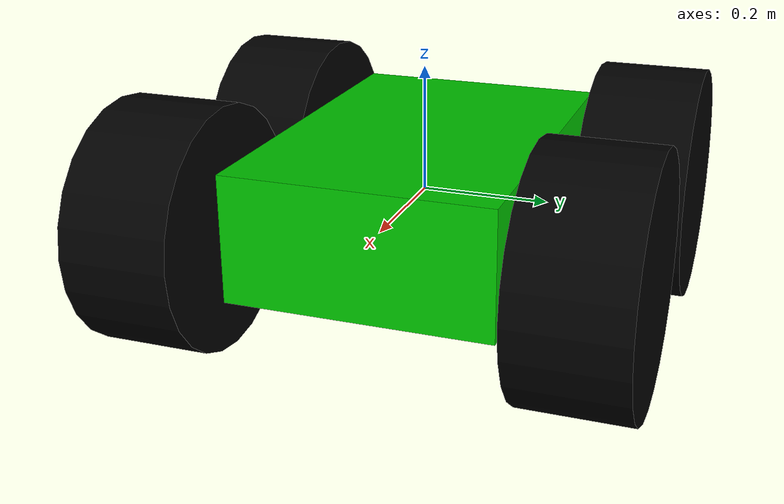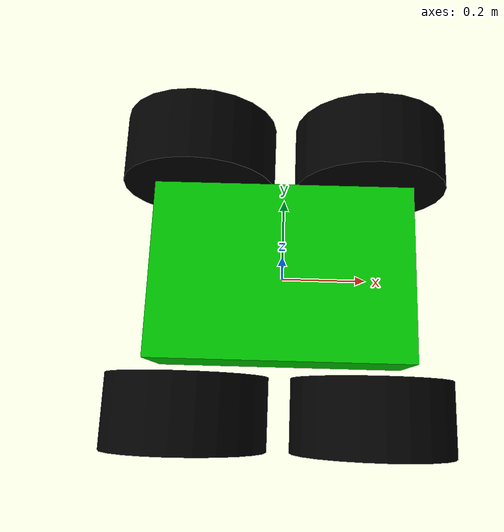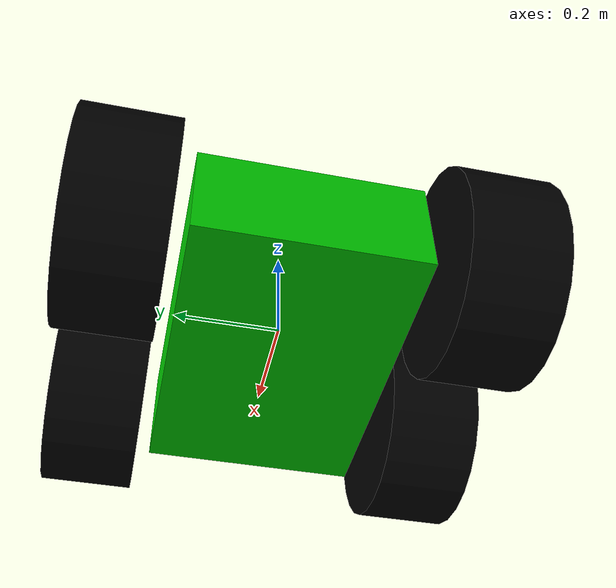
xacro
<?xml version="1.0"?>
<robot xmlns:xacro="http://www.ros.org/wiki/xacro" name="mobile_base">

  <!-- Includes -->
  <xacro:arg name="robot_name"          default="mobile_base"/>
  <xacro:arg name="simulation" 			    default="false"/>
  <xacro:arg name="wheel_joint_type"  	default="fixed"/> <!-- continuous for gazebo -->

  <!-- Load the base -->
  <xacro:include filename="$(find mobile_base_description)/urdf/mobile_base_macro.urdf.xacro"/>
  <xacro:load_mobile_base simulation="$(arg simulation)" wheel_joint_type="$(arg wheel_joint_type)"/>

  <!-- Ros control -->
  <xacro:if value="$(arg simulation)">
    <xacro:include filename="$(find mobile_base_description)/urdf/gazebo/control.xacro"/>
    <xacro:load_gazebo_ros_control ns="$(arg robot_name)"/>
  </xacro:if>
</robot>

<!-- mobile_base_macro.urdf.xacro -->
<robot xmlns:xacro="http://www.ros.org/wiki/xacro" name="mobile_base">

  <!-- Description only includes -->
  <xacro:include filename="$(find mobile_base_description)/urdf/properties.urdf.xacro" />
  <xacro:include filename="$(find mobile_base_description)/urdf/mobile_base.urdf.xacro"/>
  <!-- Simulation required includes -->
  <xacro:include filename="$(find mobile_base_description)/urdf/gazebo/control.xacro"/>
  <xacro:include filename="$(find mobile_base_description)/urdf/gazebo/transmission.xacro"/>
  <xacro:include filename="$(find mobile_base_description)/urdf/gazebo/wheel_physics.xacro"/>

  <xacro:macro name="load_mobile_base" params="simulation:=false wheel_joint_type:=continuous">

    <xacro:mobile_base wheel_joint_type="${wheel_joint_type}"/>

    <!-- Gazebo -->
    <xacro:if value="${simulation}">
      <xacro:load_gazebo_transmissions/>
      <xacro:load_wheel_physics/>
    </xacro:if>

  </xacro:macro>
</robot>

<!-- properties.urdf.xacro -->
<robot xmlns:xacro="http://www.ros.org/wiki/xacro" name="mobile_base">

    <xacro:property name="frontLeftWheelId"  value="FL_WHEEL"/>
    <xacro:property name="frontRightWheelId" value="FR_WHEEL"/>
    <xacro:property name="backLeftWheelId"  value="BL_WHEEL"/>
    <xacro:property name="backRightWheelId" value="BR_WHEEL"/>

    <xacro:property name="chassisHeight" value="0.197"/>
    <xacro:property name="chassisLength" value="0.605"/>
    <xacro:property name="chassisWidth" value="0.410"/>
    <xacro:property name="chassisMass" value="40"/>

    <xacro:property name="wheelWidth" value="0.17"/>
    <xacro:property name="wheelRadius" value="0.19"/>
    <xacro:property name="frontWheelX" value="0.2159"/>
    <xacro:property name="backWheelX" value="-0.2159"/>
    <xacro:property name="wheelClearance" value="0.03"/>
    <xacro:property name="wheelHeight" value="0.08"/>
    <xacro:property name="wheelMass" value="5"/>
</robot>

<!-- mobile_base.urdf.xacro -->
<robot xmlns:xacro="http://www.ros.org/wiki/xacro" name="mobile_base">

    <xacro:include filename="$(find mobile_base_description)/urdf/utils.urdf.xacro" />
    <xacro:property name="PI" value="3.1415926535897931"/>

    <!-- Model macros -->
    <xacro:macro name="wheel" params="wheel_id X Y wheel_joint_type">
        <joint name="${wheel_id}" type="${wheel_joint_type}">
            <parent link="base"/>
            <child link="${wheel_id}"/>
            <origin xyz="${X} ${Y} ${wheelHeight - chassisHeight/2.0}" rpy="-${0.5*PI} 0 0" />
            <axis xyz="0 0 1" rpy="0 0 0" />
            <dynamics damping="1.0" friction="0.0"/>
            <limit effort="1000" velocity="1000"/>
            <joint_properties damping="0.2" friction="0.2"/>
        </joint>

        <link name="${wheel_id}">
            <collision>
                <origin xyz="0 0 0" rpy="0 0 0" />
                <geometry>
                    <cylinder length="${wheelWidth/10}" radius="${wheelRadius}"/>
                </geometry>
            </collision>
            <visual>
                <origin xyz="0 0 0" rpy="0 0 0" />
                <geometry>
                    <cylinder length="${wheelWidth}" radius="${wheelRadius}"/>
                </geometry>
                <material name="black"/>
            </visual>
            <inertial>
                <origin xyz="0 0 0" rpy="0 0 0" />
                <mass value="${wheelMass}"/>
                <cylinder_inertia m="${wheelMass}" r="${wheelRadius}" h="${wheelWidth}"/>
            </inertial>
        </link>
    </xacro:macro>

    <xacro:macro name="chassis">

        <link name="base">
            <collision>
                <origin xyz="0 0 0" rpy="0 0 0"/>
                <geometry>
                    <box size="${chassisLength} ${chassisWidth} ${chassisHeight}"/>
                </geometry>
            </collision>
            <visual>
                <origin xyz="0 0 0" rpy="0 0 0"/>
                <geometry>
                    <box size="${chassisLength} ${chassisWidth} ${chassisHeight}"/>
                </geometry>
                <material name="green"/>
            </visual>
        </link>

        <gazebo reference="base">
            <material>Gazebo/Green</material>
        </gazebo>

        <!-- Fixed joint to add dummy inertia link -->
        <joint name="base_to_base_inertia" type="fixed">
          <parent link="base"/>
          <child link="base_inertia"/>
          <origin xyz="0 0 0" rpy="0 0 0"/>
        </joint>

        <!-- Dummy inertia link, because KDL cannot have inertia on the base link -->
        <link name="base_inertia">
          <inertial>
            <origin xyz="0 0 0" rpy="0 0 0"/>
            <mass value="${chassisMass}"/>
            <box_inertia m="${chassisMass}"
                         x="${chassisLength}"
                         y="${chassisWidth}"
                         z="${chassisHeight}"/>
          </inertial>
        </link>

    </xacro:macro>

    <xacro:macro name="mobile_base" params="wheel_joint_type:=continuous">
        <chassis/>

        <wheel wheel_id="${frontLeftWheelId}" X="${frontWheelX}"
            Y="${chassisWidth/2+wheelClearance+wheelWidth/2}"
            wheel_joint_type="${wheel_joint_type}"/>

        <wheel wheel_id="${frontRightWheelId}" X="${frontWheelX}"
            Y="${-chassisWidth/2-wheelClearance-wheelWidth/2}"
            wheel_joint_type="${wheel_joint_type}"/>

        <wheel wheel_id="${backLeftWheelId}" X="${backWheelX}"
            Y="${chassisWidth/2+wheelClearance+wheelWidth/2}"
	    wheel_joint_type="${wheel_joint_type}"/>

        <wheel wheel_id="${backRightWheelId}" X="${backWheelX}"
            Y="${-chassisWidth/2-wheelClearance-wheelWidth/2}"
            wheel_joint_type="${wheel_joint_type}" />
    </xacro:macro>
</robot>

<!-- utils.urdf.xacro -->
<robot xmlns:xacro="http://www.ros.org/wiki/xacro">

    <!--   Inertia definitions -->
        <xacro:macro name="cylinder_inertia" params="m r h">
            <inertia
              ixx="${m*(3*r*r+h*h)/12}"
              ixy="0"
              ixz="0"
              iyy="${m*(3*r*r+h*h)/12}"
              iyz="0"
              izz="${m*r*r/2}"
            />
        </xacro:macro>
        <xacro:macro name="box_inertia" params="m x y z">
            <inertia
                ixx="${m*(y*y+z*z)/12}"
                ixy="0"
                ixz="0"
                iyy="${m*(x*x+z*z)/12}"
                iyz="0"
                izz="${m*(x*x+z*z)/12}"
            />
        </xacro:macro>
        <xacro:macro name="sphere_inertia" params="m r">
            <inertia
                ixx="${2*m*r*r/5}"
                ixy="0"
                ixz="0"
                iyy="${2*m*r*r/5}"
                iyz="0"
                izz="${2*m*r*r/5}"
            />
        </xacro:macro>

    <!-- Materials -->
        <material name="black">
            <color rgba="0 0 0 255"/>
        </material>
        <material name="dark_grey">
          <color rgba="0 0 0 155 255"/>
        </material>
        <material name="blue">
            <color rgba="0 0 200 255"/>
        </material>
        <material name="green">
            <color rgba="0 200 0 255"/>
        </material>
        <material name="grey">
            <color rgba="50 50 50 255"/>
        </material>
        <material name="orange">
            <color rgba="255 108 10 255"/>
        </material>
        <material name="brown">
            <color rgba="222 207 195 255"/>
        </material>
        <material name="red">
            <color rgba="200 0 0 255"/>
        </material>
        <material name="white">
            <color rgba="255 255 255 255"/>
        </material>

  </robot>
